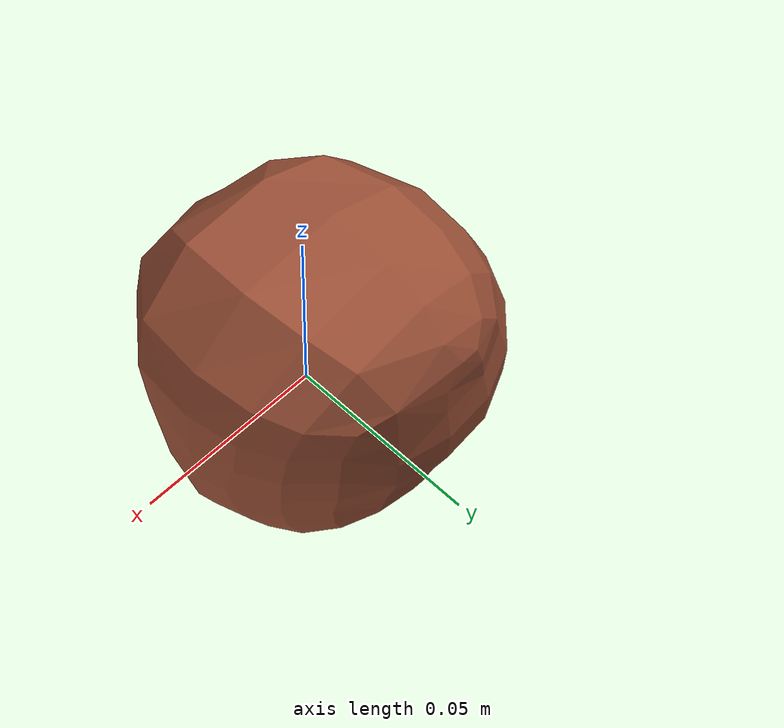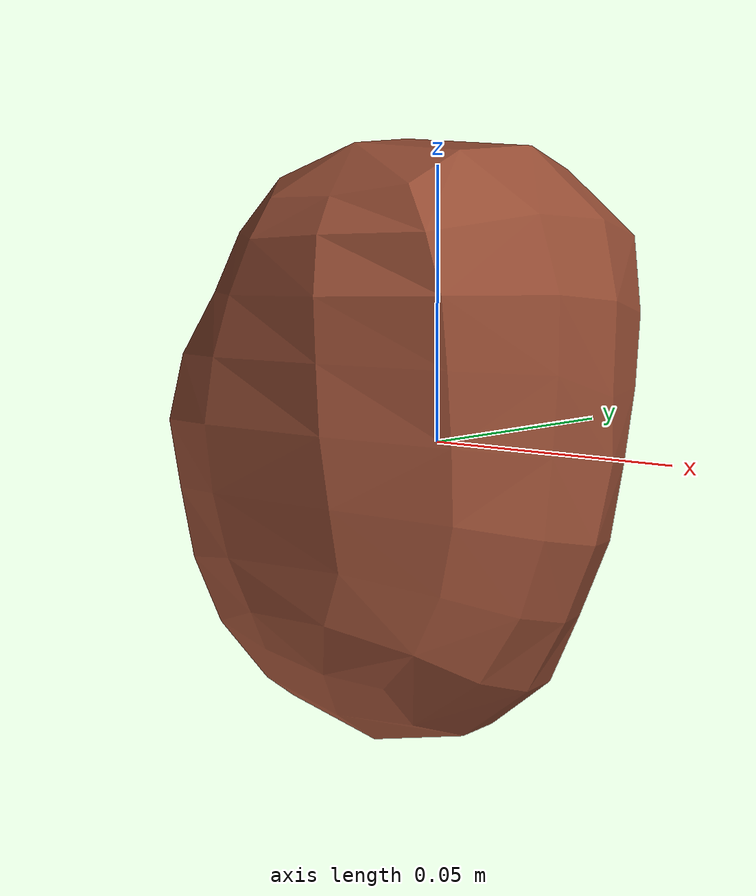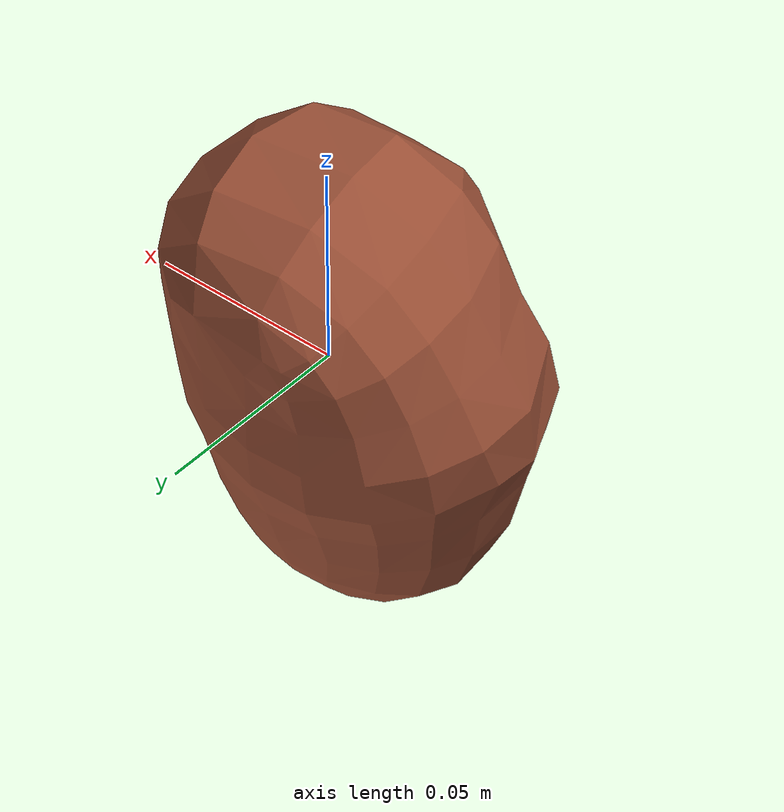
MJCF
<mujoco model="Potato_15">
  <compiler autolimits="true" boundmass="0.01" angle="radian"/>
  <default>
    <default class="/">
      <default class="__VISUAL_MJT__">
        <geom contype="0" conaffinity="0" group="0"/>
      </default>
      <default class="__STRUCTURAL_MJT__">
        <geom contype="8" conaffinity="15" group="4" friction="0.90000000000000002 0.90000000000000002 0.001" solref="0.025000000000000001 1" solimp="0.998 0.998 0.001"/>
      </default>
      <default class="__DYNAMIC_MJT__">
        <geom contype="1" conaffinity="15" group="4" friction="0.90000000000000002 0.90000000000000002 0.001" solref="0.025000000000000001 1" solimp="0.998 0.998 0.001"/>
      </default>
    </default>
  </default>
  <asset>
    <texture name="Potato2_Mat5" type="2d" file="Potato2_AlbedoTransparency.png"/>
    <material name="material_Potato2_Mat5" class="/" texture="Potato2_Mat5" specular="0.5" shininess="0.5" rgba="0.80147060000000003 0.4302011 0.309 1"/>
    <mesh name="Potato_15_potato_b5" class="/" file="Potato_15_potato_b5/Potato_15_potato_b5.obj" scale="1 1 1"/>
  </asset>
  <worldbody>
    <body name="Potato_15">
      <joint name="Potato_15_free" class="/" type="free" pos="0 0 0" axis="0 0 1" stiffness="0" range="0 0" armature="0" damping="0.10000000000000001" frictionloss="0"/>
      <body name="Potato_15_potato_b5" pos="-0.00398 -0.0058417987060546874 -4.7060546874999956e-05" quat="0.9958844780921936 -0.090631924569606781 0 0">
        <geom name="Potato_15_potato_b5" class="__VISUAL_MJT__" type="mesh" material="material_Potato2_Mat5" shellinertia="true" mesh="Potato_15_potato_b5"/>
        <geom name="Potato_15_PrimitiveCollider_0" class="__DYNAMIC_MJT__" type="capsule" size="0.042472206056118011 0.014781154692173004" rgba="0 1 0 1" pos="-0.0039779692888259888 0.0059160254895687103 0.00080914911814033985" quat="1.4751396609986736e-06 0.99999999999891198 0 0"/>
      </body>
    </body>
  </worldbody>
</mujoco>
